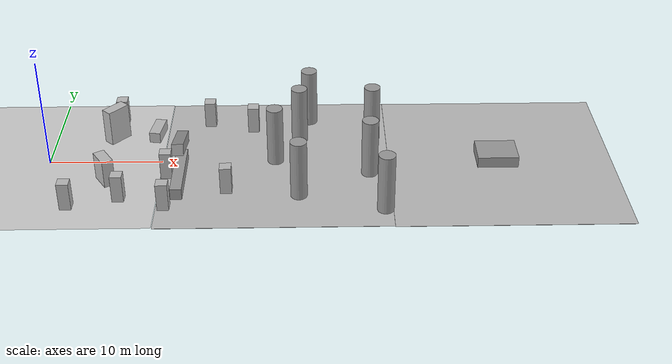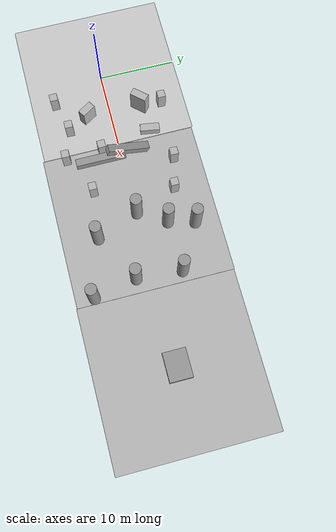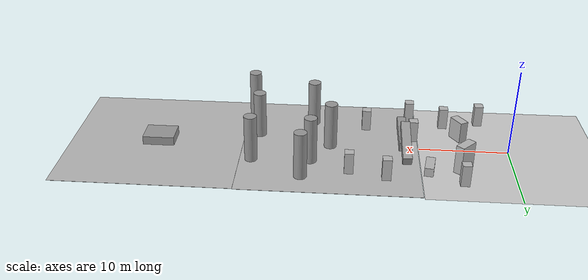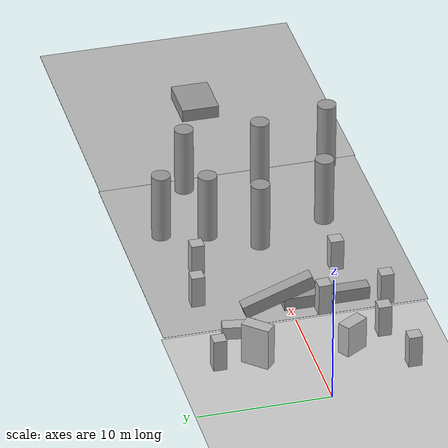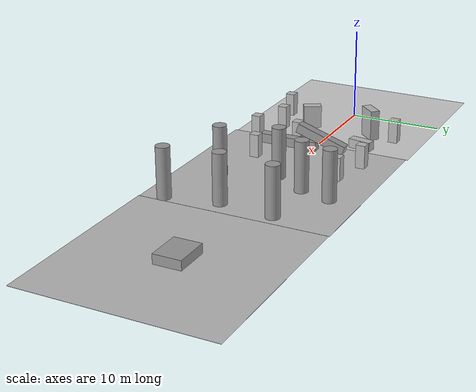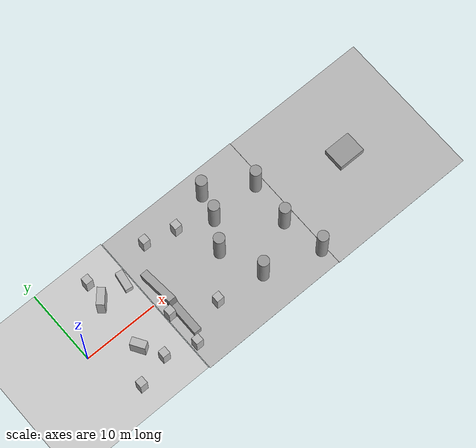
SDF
<sdf version="1.6">
 <world name="default">
  <light name="sun" type="directional">
   <pose>0 0 10 0 -0 0</pose>
   <diffuse>0.8 0.8 0.8 1</diffuse>
   <specular>0.2 0.2 0.2 1</specular>
   <attenuation>
    <range>1000</range>
    <constant>0.9</constant>
    <linear>0.01</linear>
    <quadratic>0.001</quadratic>
   </attenuation>
   <direction>-0.5 0.1 -0.9</direction>
  </light>
  <gravity>0 0 -9.8</gravity>
  <magnetic_field>6e-06 2.3e-05 -4.2e-05</magnetic_field>
  <atmosphere type="adiabatic"/>
  <physics name="default_physics" default="0" type="ode">
   <max_step_size>0.001</max_step_size>
   <real_time_factor>1</real_time_factor>
   <real_time_update_rate>1000</real_time_update_rate>
  </physics>
  <scene><ambient>0.4 0.4 0.4 1</ambient><background>0.7 0.7 0.7 1</background><shadows>1</shadows></scene>
  <audio><device>default</device></audio>
  <spherical_coordinates>
   <surface_model>EARTH_WGS84</surface_model>
   <latitude_deg>0</latitude_deg>
   <longitude_deg>0</longitude_deg>
   <elevation>0</elevation>
   <heading_deg>0</heading_deg>
  </spherical_coordinates>
  <model name="unit_box">
   <pose>9.16141 4.48585 0.5 -1.5708 -0 -0.156597</pose>
   <link name="link">
    <inertial>
     <mass>1</mass>
     <inertia>
      <ixx>0.166667</ixx>
      <ixy>0</ixy>
      <ixz>0</ixz>
      <iyy>0.166667</iyy>
      <iyz>0</iyz>
      <izz>0.166667</izz>
     </inertia>
    </inertial>
    <collision name="collision"><geometry><box><size>1 1 2.5</size></box></geometry></collision>
    <visual name="visual">
     <geometry><box><size>1 1 2.5</size></box></geometry>
     <material>
      <script>
       <uri>file://media/materials/scripts/wallpaper.material</uri>
       <name>wallpaper/wallpaper24</name>
      </script>
     </material>
    </visual>
   </link>
  </model>
  <model name="unit_box_0">
   <pose>17.9589 5.41519 1.25 -1e-06 -2e-06 0.000841</pose>
   <link name="link">
    <inertial>
     <mass>1</mass>
     <inertia>
      <ixx>0.166667</ixx>
      <ixy>0</ixy>
      <ixz>0</ixz>
      <iyy>0.166667</iyy>
      <iyz>0</iyz>
      <izz>0.166667</izz>
     </inertia>
    </inertial>
    <collision name="collision"><geometry><box><size>1 1 2.5</size></box></geometry></collision>
    <visual name="visual">
     <geometry><box><size>1 1 2.5</size></box></geometry>
     <material>
      <script>
       <uri>file://media/materials/scripts/wallpaper.material</uri>
       <name>wallpaper/wallpaper20</name>
      </script>
     </material>
    </visual>
   </link>
  </model>
  <model name="unit_box_2">
   <pose>15.9696 -4.65977 1.25 0 -0 0.010248</pose>
   <link name="link">
    <inertial>
     <mass>1</mass>
     <inertia>
      <ixx>0.166667</ixx>
      <ixy>0</ixy>
      <ixz>0</ixz>
      <iyy>0.166667</iyy>
      <iyz>0</iyz>
      <izz>0.166667</izz>
     </inertia>
    </inertial>
    <collision name="collision"><geometry><box><size>1 1 2.5</size></box></geometry></collision>
    <visual name="visual">
     <geometry><box><size>1 1 2.5</size></box></geometry>
     <material>
      <script>
       <uri>file://media/materials/scripts/wallpaper.material</uri>
       <name>wallpaper/wallpaper28</name>
      </script>
     </material>
    </visual>
   </link>
  </model>
  <model name="unit_box_3">
   <pose>5.49743 4.06502 1.64768 -1e-06 -0 -0.738816</pose>
   <link name="link">
    <inertial>
     <mass>1</mass>
     <inertia>
      <ixx>0.166667</ixx>
      <ixy>0</ixy>
      <ixz>0</ixz>
      <iyy>0.166667</iyy>
      <iyz>0</iyz>
      <izz>0.166667</izz>
     </inertia>
    </inertial>
    <collision name="collision"><geometry><box><size>1 2.17259 3.29535</size></box></geometry></collision>
    <visual name="visual">
     <geometry><box><size>1 2.17259 3.29535</size></box></geometry>
     <material>
      <script>
       <uri>file://media/materials/scripts/wallpaper.material</uri>
       <name>wallpaper/wallpaper18</name>
      </script>
     </material>
    </visual>
   </link>
  </model>
  <model name="unit_box_4">
   <pose>10.8278 -7.02763 1.25 -1e-06 2e-06 -0.004258</pose>
   <link name="link">
    <inertial>
     <mass>1</mass>
     <inertia>
      <ixx>0.166667</ixx>
      <ixy>0</ixy>
      <ixz>0</ixz>
      <iyy>0.166667</iyy>
      <iyz>0</iyz>
      <izz>0.166667</izz>
     </inertia>
    </inertial>
    <collision name="collision"><geometry><box><size>1 1 2.5</size></box></geometry></collision>
    <visual name="visual">
     <geometry><box><size>1 1 2.5</size></box></geometry>
     <material>
      <script>
       <uri>file://media/materials/scripts/wallpaper.material</uri>
       <name>wallpaper/wallpaper17</name>
      </script>
     </material>
    </visual>
   </link>
  </model>
  <model name="unit_box_5">
   <pose>2.64178 -6.77712 1.25 2e-06 2e-06 0.002835</pose>
   <link name="link">
    <inertial>
     <mass>1</mass>
     <inertia>
      <ixx>0.166667</ixx>
      <ixy>0</ixy>
      <ixz>0</ixz>
      <iyy>0.166667</iyy>
      <iyz>0</iyz>
      <izz>0.166667</izz>
     </inertia>
    </inertial>
    <collision name="collision"><geometry><box><size>1 1 2.5</size></box></geometry></collision>
    <visual name="visual">
     <geometry><box><size>1 1 2.5</size></box></geometry>
     <material>
      <script>
       <uri>file://media/materials/scripts/wallpaper.material</uri>
       <name>wallpaper/wallpaper16</name>
      </script>
     </material>
    </visual>
   </link>
  </model>
  <model name="unit_box_6">
   <pose>5.36073 -2.95743 1.25 -4e-06 -0 0.554794</pose>
   <link name="link">
    <inertial>
     <mass>1</mass>
     <inertia>
      <ixx>0.166667</ixx>
      <ixy>0</ixy>
      <ixz>0</ixz>
      <iyy>0.166667</iyy>
      <iyz>0</iyz>
      <izz>0.166667</izz>
     </inertia>
    </inertial>
    <collision name="collision"><geometry><box><size>1 1.92239 2.5</size></box></geometry></collision>
    <visual name="visual">
     <geometry><box><size>1 1.92239 2.5</size></box></geometry>
     <material>
      <script>
       <uri>file://media/materials/scripts/wallpaper.material</uri>
       <name>wallpaper/wallpaper15</name>
      </script>
     </material>
    </visual>
   </link>
  </model>
  <model name="unit_box_7">
   <pose>6.8876 -5.73587 1.25 -2e-06 2e-06 -0.011468</pose>
   <link name="link">
    <inertial>
     <mass>1</mass>
     <inertia>
      <ixx>0.166667</ixx>
      <ixy>0</ixy>
      <ixz>0</ixz>
      <iyy>0.166667</iyy>
      <iyz>0</iyz>
      <izz>0.166667</izz>
     </inertia>
    </inertial>
    <collision name="collision"><geometry><box><size>1 1 2.5</size></box></geometry></collision>
    <visual name="visual">
     <geometry><box><size>1 1 2.5</size></box></geometry>
     <material>
      <script>
       <uri>file://media/materials/scripts/wallpaper.material</uri>
       <name>wallpaper/wallpaper14</name>
      </script>
     </material>
    </visual>
   </link>
  </model>
  <model name="unit_box_8">
   <pose>13.9139 6.4271 1.25 0 0 -0.011636</pose>
   <link name="link">
    <inertial>
     <mass>1</mass>
     <inertia>
      <ixx>0.166667</ixx>
      <ixy>0</ixy>
      <ixz>0</ixz>
      <iyy>0.166667</iyy>
      <iyz>0</iyz>
      <izz>0.166667</izz>
     </inertia>
    </inertial>
    <collision name="collision"><geometry><box><size>1 1 2.5</size></box></geometry></collision>
    <visual name="visual">
     <geometry><box><size>1 1 2.5</size></box></geometry>
     <material>
      <script><uri>file://media/materials/scripts/wallpaper.material</uri><name>wallpaper/wallpaper6</name></script>
     </material>
    </visual>
   </link>
  </model>
  <model name="unit_box_9">
   <pose>5.66697 6.91711 1.25 1e-06 1e-06 0.001794</pose>
   <link name="link">
    <inertial>
     <mass>1</mass>
     <inertia>
      <ixx>0.166667</ixx>
      <ixy>0</ixy>
      <ixz>0</ixz>
      <iyy>0.166667</iyy>
      <iyz>0</iyz>
      <izz>0.166667</izz>
     </inertia>
    </inertial>
    <collision name="collision"><geometry><box><size>1 1 2.5</size></box></geometry></collision>
    <visual name="visual">
     <geometry><box><size>1 1 2.5</size></box></geometry>
     <material>
      <script>
       <uri>file://media/materials/scripts/wallpaper.material</uri>
       <name>wallpaper/wallpaper10</name>
      </script>
     </material>
    </visual>
   </link>
   <plugin name="push_animate" filename="libanimated_box.so"/>
  </model>
  <model name="unit_box_11">
   <pose>10.6345 -2.26067 1.25 -0 -2e-06 0.026286</pose>
   <link name="link">
    <inertial>
     <mass>1</mass>
     <inertia>
      <ixx>0.166667</ixx>
      <ixy>0</ixy>
      <ixz>0</ixz>
      <iyy>0.166667</iyy>
      <iyz>0</iyz>
      <izz>0.166667</izz>
     </inertia>
    </inertial>
    <collision name="collision"><geometry><box><size>1 1 2.5</size></box></geometry></collision>
    <visual name="visual">
     <geometry><box><size>1 1 2.5</size></box></geometry>
     <material>
      <script>
       <uri>file://media/materials/scripts/wallpaper.material</uri>
       <name>wallpaper/wallpaper25</name>
      </script>
     </material>
    </visual>
   </link>
  </model>
  <model name="ground20x60">
   <model name="my_ground_plane">
    <static>1</static>
    <link name="link">
     <collision name="collision">
      <geometry><plane><normal>0 0 1</normal><size>20 20</size></plane></geometry>
      <surface><friction><ode><mu>100</mu><mu2>50</mu2></ode></friction></surface>
     </collision>
     <visual name="visual">
      <cast_shadows>0</cast_shadows>
      <geometry><plane><normal>0 0 1</normal><size>20 20</size></plane></geometry>
      <material>
       <script>
        <uri>model://ground20x20/materials/scripts</uri>
        <uri>model://ground20x20/materials/textures</uri>
        <name>WoodGround/Image</name>
       </script>
      </material>
     </visual>
    </link>
    <pose>-20.0603 0.142959 0 0 -0 0</pose>
   </model>
   <model name="my_ground_plane_0">
    <static>1</static>
    <link name="link">
     <collision name="collision">
      <geometry><plane><normal>0 0 1</normal><size>20 20</size></plane></geometry>
      <surface><friction><ode><mu>100</mu><mu2>50</mu2></ode></friction></surface>
     </collision>
     <visual name="visual">
      <cast_shadows>0</cast_shadows>
      <geometry><plane><normal>0 0 1</normal><size>20 20</size></plane></geometry>
      <material>
       <script>
        <uri>model://ground20x20/materials/scripts</uri>
        <uri>model://ground20x20/materials/textures</uri>
        <name>WoodGround/Image</name>
       </script>
      </material>
     </visual>
    </link>
    <pose>0.026452 -0.032681 0 0 -0 0</pose>
   </model>
   <model name="my_ground_plane_1">
    <static>1</static>
    <link name="link">
     <collision name="collision">
      <geometry><plane><normal>0 0 1</normal><size>20 20</size></plane></geometry>
      <surface><friction><ode><mu>100</mu><mu2>50</mu2></ode></friction></surface>
     </collision>
     <visual name="visual">
      <cast_shadows>0</cast_shadows>
      <geometry><plane><normal>0 0 1</normal><size>20 20</size></plane></geometry>
      <material>
       <script>
        <uri>model://ground20x20/materials/scripts</uri>
        <uri>model://ground20x20/materials/textures</uri>
        <name>WoodGround/Image</name>
       </script>
      </material>
     </visual>
    </link>
    <pose>20.0339 -0.110278 0 0 -0 0</pose>
   </model>
   <static>0</static>
   <pose>20.1149 -0.064726 0 0 -0 0</pose>
  </model>
  <model name="unit_box_12">
   <pose>11.7669 -2.73623 0.504379 -0.002054 -1e-06 -0.000346</pose>
   <link name="unit_box_12::link">
    <inertial>
     <mass>1</mass>
     <inertia>
      <ixx>0.166667</ixx>
      <ixy>0</ixy>
      <ixz>0</ixz>
      <iyy>0.166667</iyy>
      <iyz>0</iyz>
      <izz>0.166667</izz>
     </inertia>
    </inertial>
    <collision name="collision"><geometry><box><size>1 6.46057 1.02202</size></box></geometry></collision>
    <visual name="visual">
     <geometry><box><size>1 6.46057 1.02202</size></box></geometry>
     <material>
      <script><name>Gazebo/Grey</name><uri>file://media/materials/scripts/gazebo.material</uri></script>
     </material>
    </visual>
    <kinematic>1</kinematic>
   </link>
  </model>
  <model name="unit_box_12_clone">
   <pose>11.5782 0.939927 1.38415 -1.54998 -1.23834 1.57044</pose>
   <link name="link">
    <inertial>
     <mass>1</mass>
     <inertia>
      <ixx>0.166667</ixx>
      <ixy>0</ixy>
      <ixz>0</ixz>
      <iyy>0.166667</iyy>
      <iyz>0</iyz>
      <izz>0.166667</izz>
     </inertia>
    </inertial>
    <collision name="collision"><geometry><box><size>1 5.56586 1.02202</size></box></geometry></collision>
    <visual name="visual">
     <geometry><box><size>1 5.56586 1.02202</size></box></geometry>
     <material>
      <script><name>Gazebo/Grey</name><uri>file://media/materials/scripts/gazebo.material</uri></script>
     </material>
    </visual>
   </link>
  </model>
  <model name="unit_cylinder">
   <pose>23.1462 6.80523 2.69641 0 -0 0.000291</pose>
   <link name="link">
    <inertial>
     <mass>1</mass>
     <inertia><ixx>0.145833</ixx><ixy>0</ixy><ixz>0</ixz><iyy>0.145833</iyy><iyz>0</iyz><izz>0.125</izz></inertia>
    </inertial>
    <collision name="collision">
     <geometry><cylinder><radius>0.720337</radius><length>5.39282</length></cylinder></geometry>
    </collision>
    <visual name="visual">
     <geometry><cylinder><radius>0.720337</radius><length>5.39282</length></cylinder></geometry>
     <material>
      <script><name>Gazebo/Grey</name><uri>file://media/materials/scripts/gazebo.material</uri></script>
     </material>
    </visual>
   </link>
  </model>
  <model name="unit_cylinder_clone">
   <pose>22.2148 -5.5145 2.69641 0 -0 0.000156</pose>
   <link name="link">
    <inertial>
     <mass>1</mass>
     <inertia><ixx>0.145833</ixx><ixy>0</ixy><ixz>0</ixz><iyy>0.145833</iyy><iyz>0</iyz><izz>0.125</izz></inertia>
    </inertial>
    <collision name="collision">
     <geometry><cylinder><radius>0.720339</radius><length>5.39283</length></cylinder></geometry>
    </collision>
    <visual name="visual">
     <geometry><cylinder><radius>0.720339</radius><length>5.39283</length></cylinder></geometry>
     <material>
      <script><name>Gazebo/Grey</name><uri>file://media/materials/scripts/gazebo.material</uri></script>
     </material>
    </visual>
   </link>
  </model>
  <model name="unit_cylinder_clone_0">
   <pose>20.1076 -0.014515 2.69641 0 -0 0.000256</pose>
   <link name="link">
    <inertial>
     <mass>1</mass>
     <inertia><ixx>0.145833</ixx><ixy>0</ixy><ixz>0</ixz><iyy>0.145833</iyy><iyz>0</iyz><izz>0.125</izz></inertia>
    </inertial>
    <collision name="collision">
     <geometry><cylinder><radius>0.720339</radius><length>5.39283</length></cylinder></geometry>
    </collision>
    <visual name="visual">
     <geometry><cylinder><radius>0.720339</radius><length>5.39283</length></cylinder></geometry>
     <material>
      <script><name>Gazebo/Grey</name><uri>file://media/materials/scripts/gazebo.material</uri></script>
     </material>
    </visual>
   </link>
  </model>
  <model name="unit_cylinder_clone_1">
   <pose>28.3955 -2.18148 2.69641 0 -0 0.000189</pose>
   <link name="link">
    <inertial>
     <mass>1</mass>
     <inertia><ixx>0.145833</ixx><ixy>0</ixy><ixz>0</ixz><iyy>0.145833</iyy><iyz>0</iyz><izz>0.125</izz></inertia>
    </inertial>
    <collision name="collision">
     <geometry><cylinder><radius>0.720339</radius><length>5.39283</length></cylinder></geometry>
    </collision>
    <visual name="visual">
     <geometry><cylinder><radius>0.720339</radius><length>5.39283</length></cylinder></geometry>
     <material>
      <script><name>Gazebo/Grey</name><uri>file://media/materials/scripts/gazebo.material</uri></script>
     </material>
    </visual>
   </link>
  </model>
  <model name="unit_cylinder_clone_2">
   <pose>28.8384 3.59744 2.69641 0 -0 0.000219</pose>
   <link name="link">
    <inertial>
     <mass>1</mass>
     <inertia><ixx>0.145833</ixx><ixy>0</ixy><ixz>0</ixz><iyy>0.145833</iyy><iyz>0</iyz><izz>0.125</izz></inertia>
    </inertial>
    <collision name="collision">
     <geometry><cylinder><radius>0.720339</radius><length>5.39283</length></cylinder></geometry>
    </collision>
    <visual name="visual">
     <geometry><cylinder><radius>0.720339</radius><length>5.39283</length></cylinder></geometry>
     <material>
      <script><name>Gazebo/Grey</name><uri>file://media/materials/scripts/gazebo.material</uri></script>
     </material>
    </visual>
   </link>
  </model>
  <model name="unit_box_1">
   <pose>39.8361 -0.064211 0.499858 9.9e-05 -0 0</pose>
   <link name="link">
    <inertial>
     <mass>1</mass>
     <inertia>
      <ixx>0.166667</ixx>
      <ixy>0</ixy>
      <ixz>0</ixz>
      <iyy>0.166667</iyy>
      <iyz>0</iyz>
      <izz>0.166667</izz>
     </inertia>
    </inertial>
    <collision name="collision"><geometry><box><size>3.61697 2.8855 1</size></box></geometry></collision>
    <visual name="visual">
     <geometry><box><size>3.61697 2.8855 1</size></box></geometry>
     <material>
      <script><name>Gazebo/Grey</name><uri>file://media/materials/scripts/gazebo.material</uri></script>
     </material>
    </visual>
   </link>
  </model>
  <model name="unit_cylinder_clone_0_clone">
   <pose>29.4865 -7.70087 2.69641 0 -0 0.000256</pose>
   <link name="link">
    <inertial>
     <mass>1</mass>
     <inertia><ixx>0.145833</ixx><ixy>0</ixy><ixz>0</ixz><iyy>0.145833</iyy><iyz>0</iyz><izz>0.125</izz></inertia>
    </inertial>
    <collision name="collision">
     <geometry><cylinder><radius>0.720339</radius><length>5.39283</length></cylinder></geometry>
    </collision>
    <visual name="visual">
     <geometry><cylinder><radius>0.720339</radius><length>5.39283</length></cylinder></geometry>
     <material>
      <script><name>Gazebo/Grey</name><uri>file://media/materials/scripts/gazebo.material</uri></script>
     </material>
    </visual>
   </link>
  </model>
  <model name="unit_cylinder_clone_0_clone_0">
   <pose>22.2437 3.47322 2.69641 0 -0 0.000262</pose>
   <link name="link">
    <inertial>
     <mass>1</mass>
     <inertia><ixx>0.145833</ixx><ixy>0</ixy><ixz>0</ixz><iyy>0.145833</iyy><iyz>0</iyz><izz>0.125</izz></inertia>
    </inertial>
    <collision name="collision">
     <geometry><cylinder><radius>0.720339</radius><length>5.39283</length></cylinder></geometry>
    </collision>
    <visual name="visual">
     <geometry><cylinder><radius>0.720339</radius><length>5.39283</length></cylinder></geometry>
     <material>
      <script><name>Gazebo/Grey</name><uri>file://media/materials/scripts/gazebo.material</uri></script>
     </material>
    </visual>
   </link>
  </model>
 </world>
</sdf>
